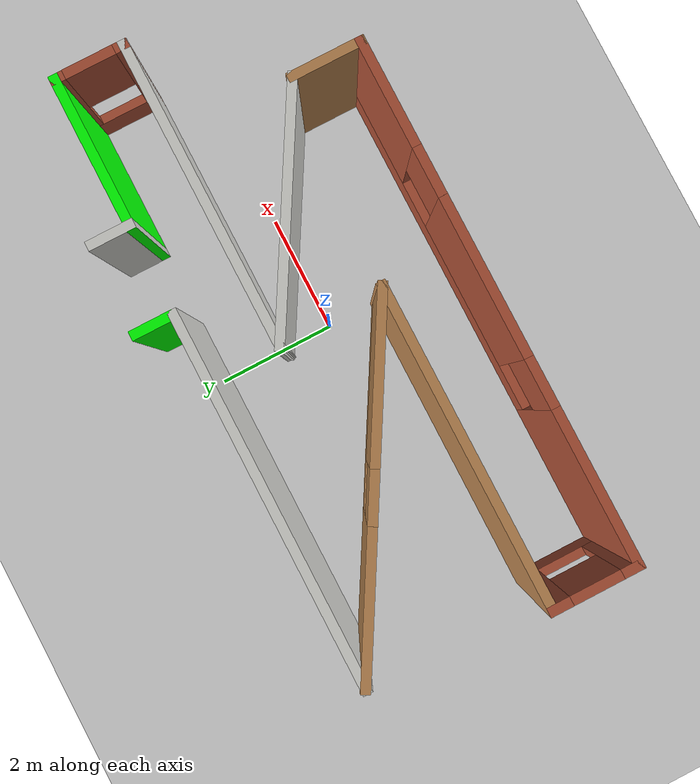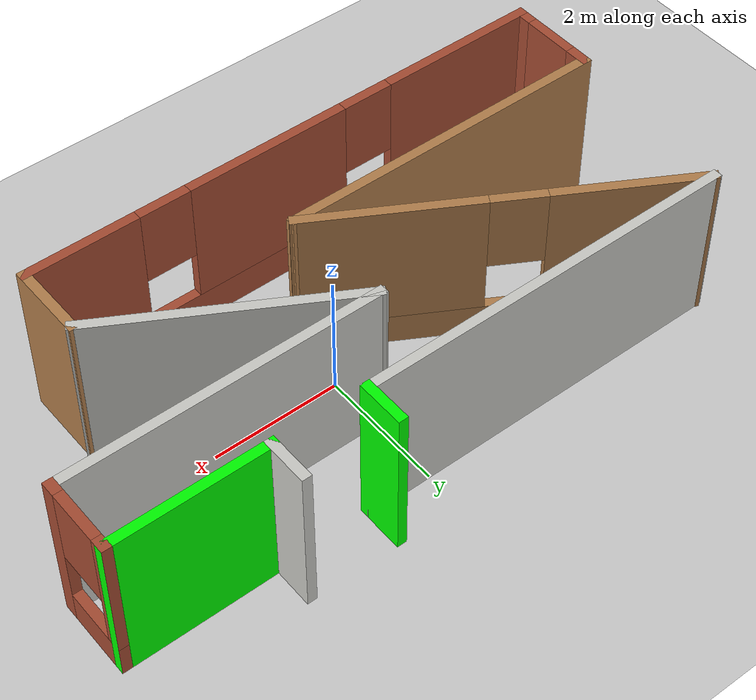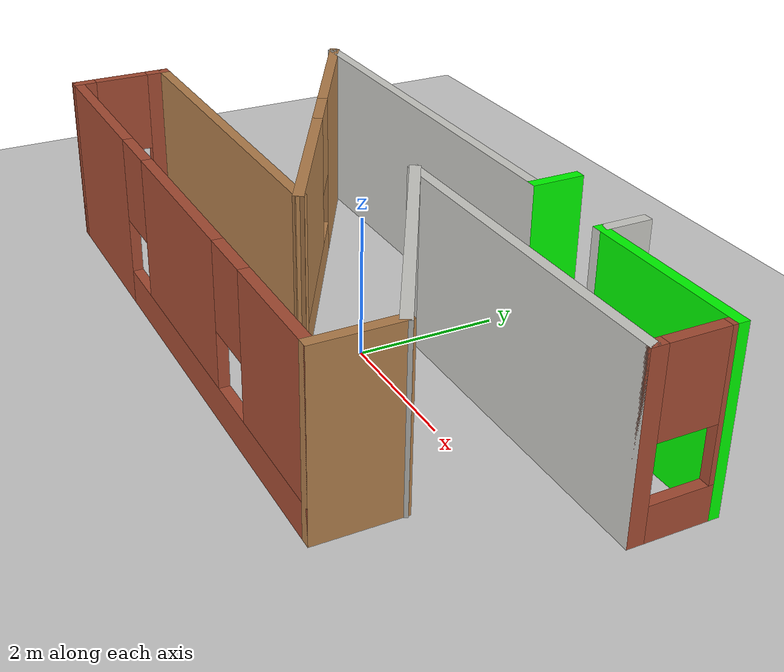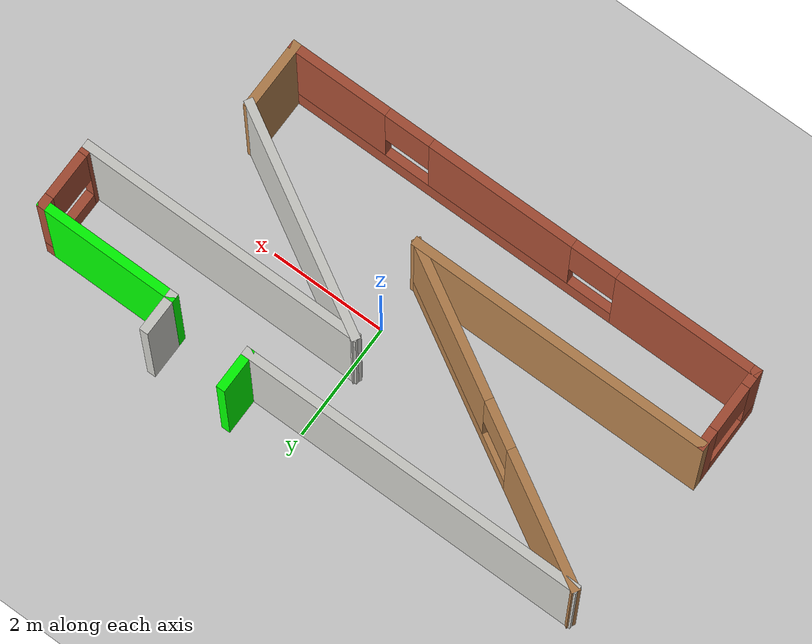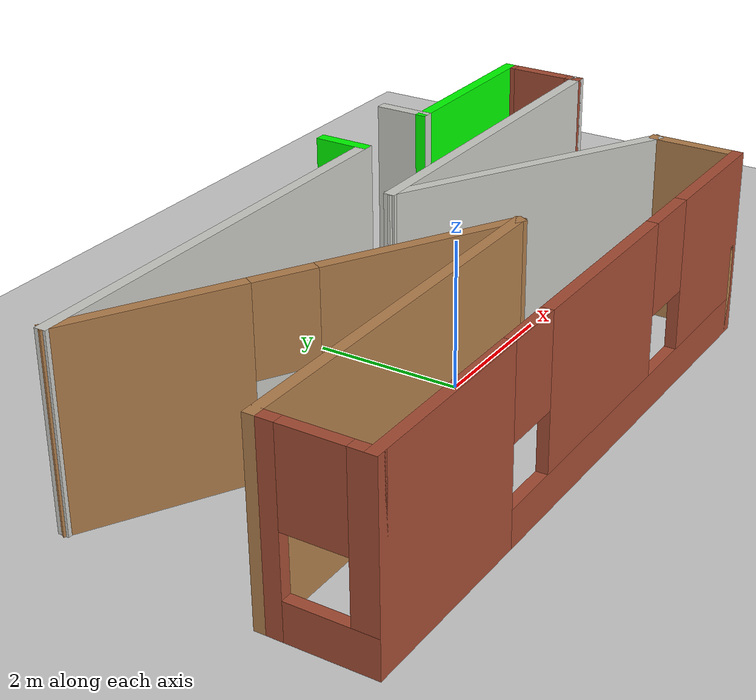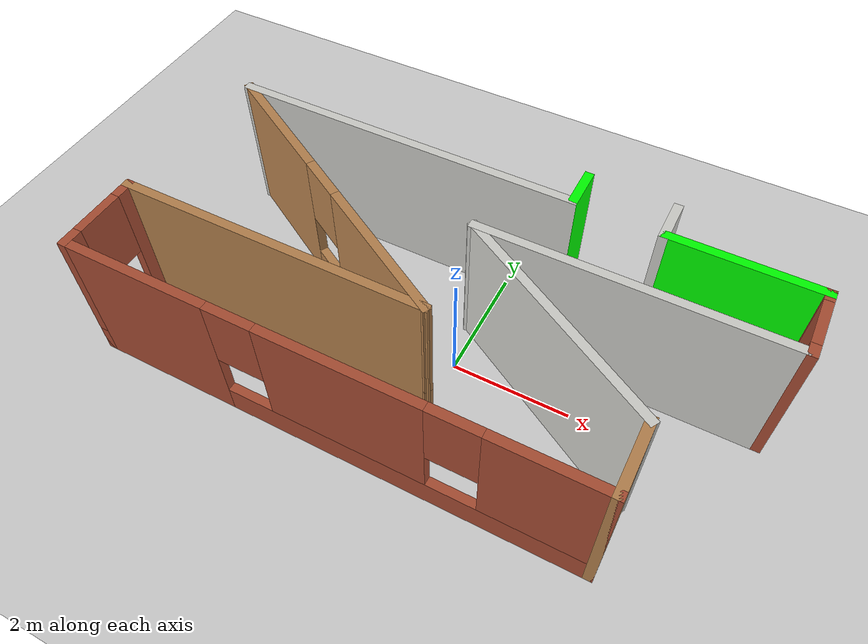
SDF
<sdf version="1.6">
 <world name="default">
  <light name="sun" type="directional">
   <pose>0 0 15 0 -0 0</pose>
   <diffuse>1 1 1 1</diffuse>
   <specular>0.1 0.1 0.1 1</specular>
   <attenuation>
    <range>1000</range>
    <constant>0.9</constant>
    <linear>0.01</linear>
    <quadratic>0.001</quadratic>
   </attenuation>
   <direction>-0.5 0.5 -1</direction>
  </light>
  <model name="ground_plane">
   <static>1</static>
   <link name="link">
    <collision name="collision">
     <geometry><plane><normal>0 0 1</normal><size>100 100</size></plane></geometry>
     <surface><friction><ode><mu>100</mu><mu2>50</mu2></ode></friction></surface>
    </collision>
    <visual name="visual">
     <transparency>1</transparency>
     <cast_shadows>0</cast_shadows>
     <geometry><plane><normal>0 0 1</normal><size>100 100</size></plane></geometry>
     <material>
      <script><uri>file://media/materials/scripts/gazebo.material</uri><name>Gazebo/Grey</name></script>
     </material>
    </visual>
   </link>
  </model>
  <gravity>0 0 -9.8</gravity>
  <magnetic_field>6e-06 2.3e-05 -4.2e-05</magnetic_field>
  <atmosphere type="adiabatic"/>
  <physics name="default_physics" default="0" type="ode">
   <max_step_size>0.001</max_step_size>
   <real_time_factor>1</real_time_factor>
   <real_time_update_rate>1000</real_time_update_rate>
  </physics>
  <scene><ambient>0.4 0.4 0.4 1</ambient><background>0.7 0.7 0.7 1</background><shadows>1</shadows></scene>
  <spherical_coordinates>
   <surface_model>EARTH_WGS84</surface_model>
   <latitude_deg>0</latitude_deg>
   <longitude_deg>0</longitude_deg>
   <elevation>0</elevation>
   <heading_deg>0</heading_deg>
  </spherical_coordinates>
  <model name="Zee">
   <pose>-0.210273 0.170078 0 0 -0 0</pose>
   <link name="Wall_0">
    <collision name="Wall_0_Collision">
     <geometry><box><size>6 0.15 2.5</size></box></geometry>
     <pose>0 0 1.25 0 -0 0</pose>
    </collision>
    <visual name="Wall_0_Visual">
     <pose>0 0 1.25 0 -0 0</pose>
     <geometry><box><size>6 0.15 2.5</size></box></geometry>
     <material>
      <script><uri>file://media/materials/scripts/gazebo.material</uri><name>Gazebo/CeilingTiled</name></script>
      <ambient>0.160784 0.960784 1 1</ambient>
     </material>
    </visual>
    <pose>-1.75764 1.775 0 0 -0 3.14159</pose>
   </link>
   <link name="Wall_1">
    <pose>-2.25777 0.375 0 0 0 -0.523599</pose>
    <visual name="Wall_1_Visual_0">
     <pose>-1.72255 0 1.25 0 -0 0</pose>
     <geometry><box><size>2.3049 0.15 2.5</size></box></geometry>
     <material>
      <script><uri>file://media/materials/scripts/gazebo.material</uri><name>Gazebo/Wood</name></script>
      <ambient>1 1 1 1</ambient>
     </material>
    </visual>
    <collision name="Wall_1_Collision_0">
     <geometry><box><size>2.3049 0.15 2.5</size></box></geometry>
     <pose>-1.72255 0 1.25 0 -0 0</pose>
    </collision>
    <visual name="Wall_1_Visual_1">
     <pose>1.15245 0 0.25 0 -0 0</pose>
     <geometry><box><size>3.4451 0.15 0.5</size></box></geometry>
     <material>
      <script><uri>file://media/materials/scripts/gazebo.material</uri><name>Gazebo/Wood</name></script>
      <ambient>1 1 1 1</ambient>
     </material>
    </visual>
    <collision name="Wall_1_Collision_1">
     <geometry><box><size>3.4451 0.15 0.5</size></box></geometry>
     <pose>1.15245 0 0.25 0 -0 0</pose>
    </collision>
    <visual name="Wall_1_Visual_2">
     <pose>1.55245 0 1.5 0 -0 0</pose>
     <geometry><box><size>2.6451 0.15 2</size></box></geometry>
     <material>
      <script><uri>file://media/materials/scripts/gazebo.material</uri><name>Gazebo/Wood</name></script>
      <ambient>1 1 1 1</ambient>
     </material>
    </visual>
    <collision name="Wall_1_Collision_2">
     <geometry><box><size>2.6451 0.15 2</size></box></geometry>
     <pose>1.55245 0 1.5 0 -0 0</pose>
    </collision>
    <visual name="Wall_1_Visual_3">
     <pose>-0.170103 0 1.9 0 -0 0</pose>
     <geometry><box><size>0.8 0.15 1.2</size></box></geometry>
     <material>
      <script><uri>file://media/materials/scripts/gazebo.material</uri><name>Gazebo/Wood</name></script>
      <ambient>1 1 1 1</ambient>
     </material>
    </visual>
    <collision name="Wall_1_Collision_3">
     <geometry><box><size>0.8 0.15 1.2</size></box></geometry>
     <pose>-0.170103 0 1.9 0 -0 0</pose>
    </collision>
   </link>
   <link name="Wall_10">
    <collision name="Wall_10_Collision">
     <geometry><box><size>0.75 0.15 2.5</size></box></geometry>
     <pose>0 0 1.25 0 -0 0</pose>
    </collision>
    <visual name="Wall_10_Visual">
     <pose>0 0 1.25 0 -0 0</pose>
     <geometry><box><size>0.75 0.15 2.5</size></box></geometry>
     <material>
      <script><uri>file://media/materials/scripts/gazebo.material</uri><name>Gazebo/CeilingTiled</name></script>
      <ambient>0 1 0 1</ambient>
     </material>
    </visual>
    <pose>2.5829 2.05 0 0 -0 1.5708</pose>
   </link>
   <link name="Wall_12">
    <collision name="Wall_12_Collision">
     <geometry><box><size>0.75 0.15 2.5</size></box></geometry>
     <pose>0 0 1.25 0 -0 0</pose>
    </collision>
    <visual name="Wall_12_Visual">
     <pose>0 0 1.25 0 -0 0</pose>
     <geometry><box><size>0.75 0.15 2.5</size></box></geometry>
     <material>
      <script><uri>file://media/materials/scripts/gazebo.material</uri><name>Gazebo/Grey</name></script>
      <ambient>0 1 0 1</ambient>
     </material>
    </visual>
    <pose>1.16736 2.075 0 0 -0 1.5708</pose>
   </link>
   <link name="Wall_2">
    <collision name="Wall_2_Collision">
     <geometry><box><size>5.25 0.15 2.5</size></box></geometry>
     <pose>0 0 1.25 0 -0 0</pose>
    </collision>
    <visual name="Wall_2_Visual">
     <pose>0 0 1.25 0 -0 0</pose>
     <geometry><box><size>5.25 0.15 2.5</size></box></geometry>
     <material>
      <script><uri>file://media/materials/scripts/gazebo.material</uri><name>Gazebo/Wood</name></script>
      <ambient>1 1 1 1</ambient>
     </material>
    </visual>
    <pose>-2.3829 -1.025 0 0 -0 3.14159</pose>
   </link>
   <link name="Wall_3">
    <pose>-4.9329 -1.7 0 0 0 -1.5708</pose>
    <visual name="Wall_3_Visual_0">
     <pose>-0.5675 0 1.25 0 -0 0</pose>
     <geometry><box><size>0.365 0.15 2.5</size></box></geometry>
     <material>
      <script><uri>file://media/materials/scripts/gazebo.material</uri><name>Gazebo/Bricks</name></script>
      <ambient>1 1 1 1</ambient>
     </material>
    </visual>
    <collision name="Wall_3_Collision_0">
     <geometry><box><size>0.365 0.15 2.5</size></box></geometry>
     <pose>-0.5675 0 1.25 0 -0 0</pose>
    </collision>
    <visual name="Wall_3_Visual_1">
     <pose>0.1825 0 0.25 0 -0 0</pose>
     <geometry><box><size>1.135 0.15 0.5</size></box></geometry>
     <material>
      <script><uri>file://media/materials/scripts/gazebo.material</uri><name>Gazebo/Bricks</name></script>
      <ambient>1 1 1 1</ambient>
     </material>
    </visual>
    <collision name="Wall_3_Collision_1">
     <geometry><box><size>1.135 0.15 0.5</size></box></geometry>
     <pose>0.1825 0 0.25 0 -0 0</pose>
    </collision>
    <visual name="Wall_3_Visual_2">
     <pose>0.5825 0 1.5 0 -0 0</pose>
     <geometry><box><size>0.335 0.15 2</size></box></geometry>
     <material>
      <script><uri>file://media/materials/scripts/gazebo.material</uri><name>Gazebo/Bricks</name></script>
      <ambient>1 1 1 1</ambient>
     </material>
    </visual>
    <collision name="Wall_3_Collision_2">
     <geometry><box><size>0.335 0.15 2</size></box></geometry>
     <pose>0.5825 0 1.5 0 -0 0</pose>
    </collision>
    <visual name="Wall_3_Visual_3">
     <pose>0.015 0 1.9 0 -0 0</pose>
     <geometry><box><size>0.8 0.15 1.2</size></box></geometry>
     <material>
      <script><uri>file://media/materials/scripts/gazebo.material</uri><name>Gazebo/Bricks</name></script>
      <ambient>1 1 1 1</ambient>
     </material>
    </visual>
    <collision name="Wall_3_Collision_3">
     <geometry><box><size>0.8 0.15 1.2</size></box></geometry>
     <pose>0.015 0 1.9 0 -0 0</pose>
    </collision>
   </link>
   <link name="Wall_4">
    <pose>-0.757901 -2.375 0 0 -0 0</pose>
    <visual name="Wall_4_Visual_0">
     <pose>-2.98237 0 1.25 0 -0 0</pose>
     <geometry><box><size>2.53526 0.15 2.5</size></box></geometry>
     <material>
      <script><uri>file://media/materials/scripts/gazebo.material</uri><name>Gazebo/Bricks</name></script>
      <ambient>1 0.666667 0 1</ambient>
     </material>
    </visual>
    <collision name="Wall_4_Collision_0">
     <geometry><box><size>2.53526 0.15 2.5</size></box></geometry>
     <pose>-2.98237 0 1.25 0 -0 0</pose>
    </collision>
    <visual name="Wall_4_Visual_1">
     <pose>1.26763 0 0.25 0 -0 0</pose>
     <geometry><box><size>5.96474 0.15 0.5</size></box></geometry>
     <material>
      <script><uri>file://media/materials/scripts/gazebo.material</uri><name>Gazebo/Bricks</name></script>
      <ambient>1 0.666667 0 1</ambient>
     </material>
    </visual>
    <collision name="Wall_4_Collision_1">
     <geometry><box><size>5.96474 0.15 0.5</size></box></geometry>
     <pose>1.26763 0 0.25 0 -0 0</pose>
    </collision>
    <visual name="Wall_4_Visual_2">
     <pose>0.375258 0 1.5 0 -0 0</pose>
     <geometry><box><size>2.58 0.15 2</size></box></geometry>
     <material>
      <script><uri>file://media/materials/scripts/gazebo.material</uri><name>Gazebo/Bricks</name></script>
      <ambient>1 0.666667 0 1</ambient>
     </material>
    </visual>
    <collision name="Wall_4_Collision_2">
     <geometry><box><size>2.58 0.15 2</size></box></geometry>
     <pose>0.375258 0 1.5 0 -0 0</pose>
    </collision>
    <visual name="Wall_4_Visual_3">
     <pose>3.35763 0 1.5 0 -0 0</pose>
     <geometry><box><size>1.78474 0.15 2</size></box></geometry>
     <material>
      <script><uri>file://media/materials/scripts/gazebo.material</uri><name>Gazebo/Bricks</name></script>
      <ambient>1 0.666667 0 1</ambient>
     </material>
    </visual>
    <collision name="Wall_4_Collision_3">
     <geometry><box><size>1.78474 0.15 2</size></box></geometry>
     <pose>3.35763 0 1.5 0 -0 0</pose>
    </collision>
    <visual name="Wall_4_Visual_4">
     <pose>-1.31474 0 1.9 0 -0 0</pose>
     <geometry><box><size>0.8 0.15 1.2</size></box></geometry>
     <material>
      <script><uri>file://media/materials/scripts/gazebo.material</uri><name>Gazebo/Bricks</name></script>
      <ambient>1 0.666667 0 1</ambient>
     </material>
    </visual>
    <collision name="Wall_4_Collision_4">
     <geometry><box><size>0.8 0.15 1.2</size></box></geometry>
     <pose>-1.31474 0 1.9 0 -0 0</pose>
    </collision>
    <visual name="Wall_4_Visual_5">
     <pose>2.06526 0 1.9 0 -0 0</pose>
     <geometry><box><size>0.8 0.15 1.2</size></box></geometry>
     <material>
      <script><uri>file://media/materials/scripts/gazebo.material</uri><name>Gazebo/Bricks</name></script>
      <ambient>1 0.666667 0 1</ambient>
     </material>
    </visual>
    <collision name="Wall_4_Collision_5">
     <geometry><box><size>0.8 0.15 1.2</size></box></geometry>
     <pose>2.06526 0 1.9 0 -0 0</pose>
    </collision>
   </link>
   <link name="Wall_5">
    <collision name="Wall_5_Collision">
     <geometry><box><size>1.25 0.15 2.5</size></box></geometry>
     <pose>0 0 1.25 0 -0 0</pose>
    </collision>
    <visual name="Wall_5_Visual">
     <pose>0 0 1.25 0 -0 0</pose>
     <geometry><box><size>1.25 0.15 2.5</size></box></geometry>
     <material>
      <script><uri>file://media/materials/scripts/gazebo.material</uri><name>Gazebo/Wood</name></script>
      <ambient>1 1 1 1</ambient>
     </material>
    </visual>
    <pose>3.4171 -1.825 0 0 -0 1.5708</pose>
   </link>
   <link name="Wall_6">
    <collision name="Wall_6_Collision">
     <geometry><box><size>4 0.15 2.5</size></box></geometry>
     <pose>0 0 1.25 0 -0 0</pose>
    </collision>
    <visual name="Wall_6_Visual">
     <pose>0 0 1.25 0 -0 0</pose>
     <geometry><box><size>4 0.15 2.5</size></box></geometry>
     <material>
      <script><uri>file://media/materials/scripts/gazebo.material</uri><name>Gazebo/CeilingTiled</name></script>
      <ambient>1 1 1 1</ambient>
     </material>
    </visual>
    <pose>1.75 -0.3125 0 0 -0 2.61799</pose>
   </link>
   <link name="Wall_7">
    <collision name="Wall_7_Collision">
     <geometry><box><size>5 0.15 2.5</size></box></geometry>
     <pose>0 0 1.25 0 -0 0</pose>
    </collision>
    <visual name="Wall_7_Visual">
     <pose>0 0 1.25 0 -0 0</pose>
     <geometry><box><size>5 0.15 2.5</size></box></geometry>
     <material>
      <script><uri>file://media/materials/scripts/gazebo.material</uri><name>Gazebo/CeilingTiled</name></script>
      <ambient>0.921569 0.807843 0.615686 1</ambient>
     </material>
    </visual>
    <pose>2.5079 0.65 0 0 -0 0</pose>
   </link>
   <link name="Wall_8">
    <pose>4.9329 1.2 0 0 -0 1.5708</pose>
    <visual name="Wall_8_Visual_0">
     <pose>-0.51 0 1.25 0 -0 0</pose>
     <geometry><box><size>0.23 0.15 2.5</size></box></geometry>
     <material>
      <script><uri>file://media/materials/scripts/gazebo.material</uri><name>Gazebo/Bricks</name></script>
      <ambient>0 0 0.498039 1</ambient>
     </material>
    </visual>
    <collision name="Wall_8_Collision_0">
     <geometry><box><size>0.23 0.15 2.5</size></box></geometry>
     <pose>-0.51 0 1.25 0 -0 0</pose>
    </collision>
    <visual name="Wall_8_Visual_1">
     <pose>0.115 0 0.25 0 -0 0</pose>
     <geometry><box><size>1.02 0.15 0.5</size></box></geometry>
     <material>
      <script><uri>file://media/materials/scripts/gazebo.material</uri><name>Gazebo/Bricks</name></script>
      <ambient>0 0 0.498039 1</ambient>
     </material>
    </visual>
    <collision name="Wall_8_Collision_1">
     <geometry><box><size>1.02 0.15 0.5</size></box></geometry>
     <pose>0.115 0 0.25 0 -0 0</pose>
    </collision>
    <visual name="Wall_8_Visual_2">
     <pose>0.515 0 1.5 0 -0 0</pose>
     <geometry><box><size>0.22 0.15 2</size></box></geometry>
     <material>
      <script><uri>file://media/materials/scripts/gazebo.material</uri><name>Gazebo/Bricks</name></script>
      <ambient>0 0 0.498039 1</ambient>
     </material>
    </visual>
    <collision name="Wall_8_Collision_2">
     <geometry><box><size>0.22 0.15 2</size></box></geometry>
     <pose>0.515 0 1.5 0 -0 0</pose>
    </collision>
    <visual name="Wall_8_Visual_3">
     <pose>0.005 0 1.9 0 -0 0</pose>
     <geometry><box><size>0.8 0.15 1.2</size></box></geometry>
     <material>
      <script><uri>file://media/materials/scripts/gazebo.material</uri><name>Gazebo/Bricks</name></script>
      <ambient>0 0 0.498039 1</ambient>
     </material>
    </visual>
    <collision name="Wall_8_Collision_3">
     <geometry><box><size>0.8 0.15 1.2</size></box></geometry>
     <pose>0.005 0 1.9 0 -0 0</pose>
    </collision>
   </link>
   <link name="Wall_9">
    <collision name="Wall_9_Collision">
     <geometry><box><size>2.5 0.15 2.5</size></box></geometry>
     <pose>0 0 1.25 0 -0 0</pose>
    </collision>
    <visual name="Wall_9_Visual">
     <pose>0 0 1.25 0 -0 0</pose>
     <geometry><box><size>2.5 0.15 2.5</size></box></geometry>
     <material>
      <script><uri>file://media/materials/scripts/gazebo.material</uri><name>Gazebo/Grey</name></script>
      <ambient>0 1 0 1</ambient>
     </material>
    </visual>
    <pose>3.7579 1.75 0 0 -0 3.14159</pose>
   </link>
   <static>1</static>
  </model>
 </world>
</sdf>
